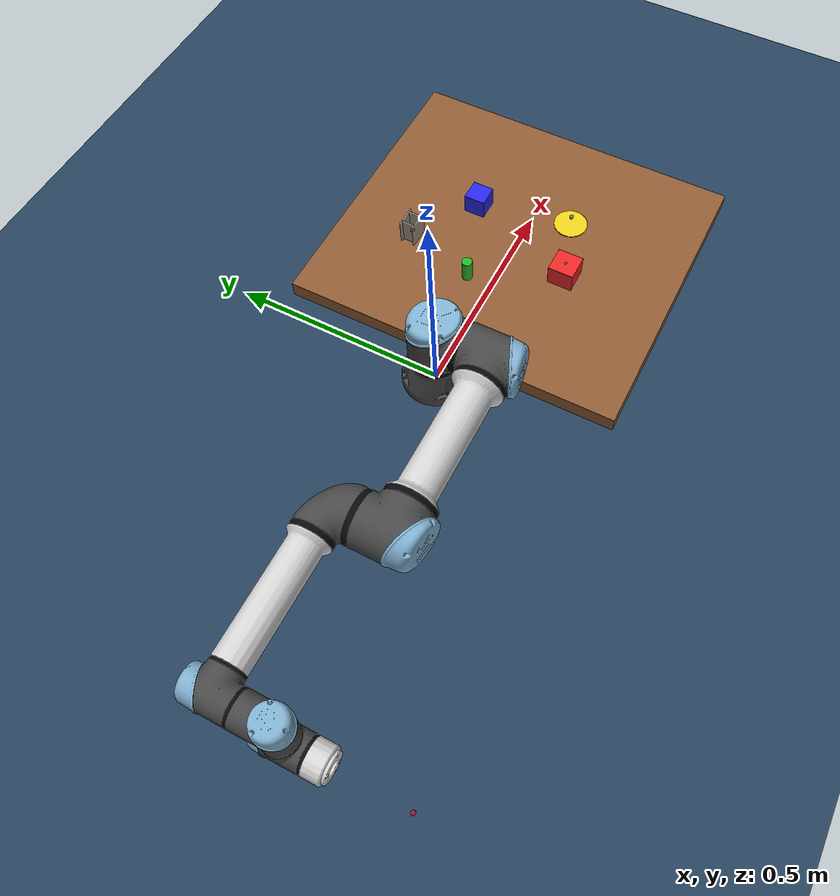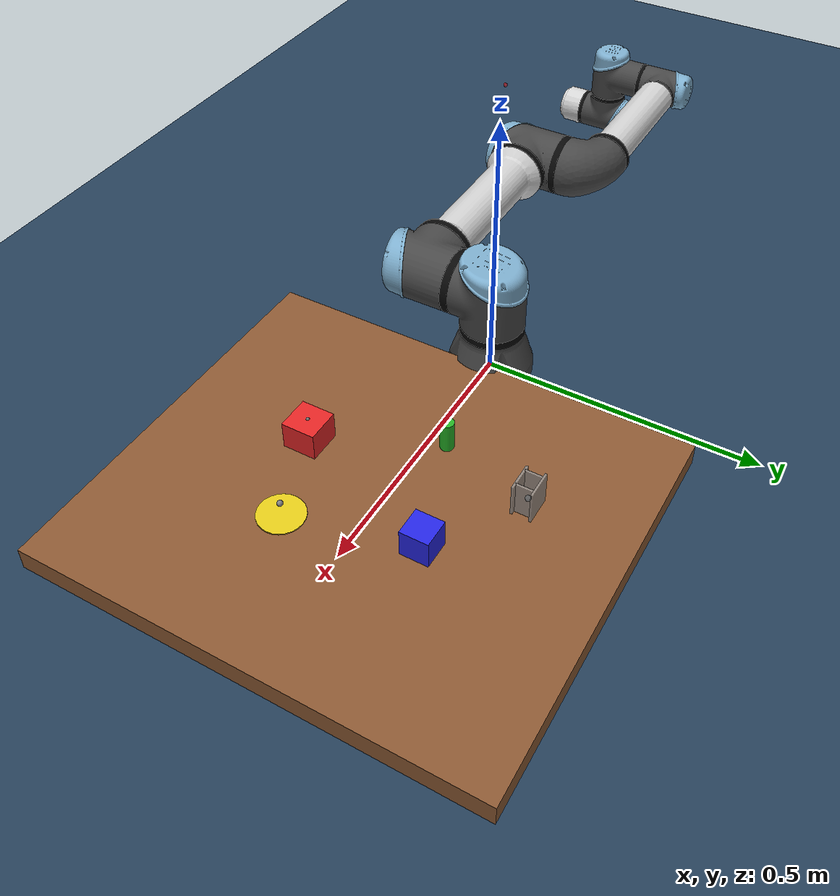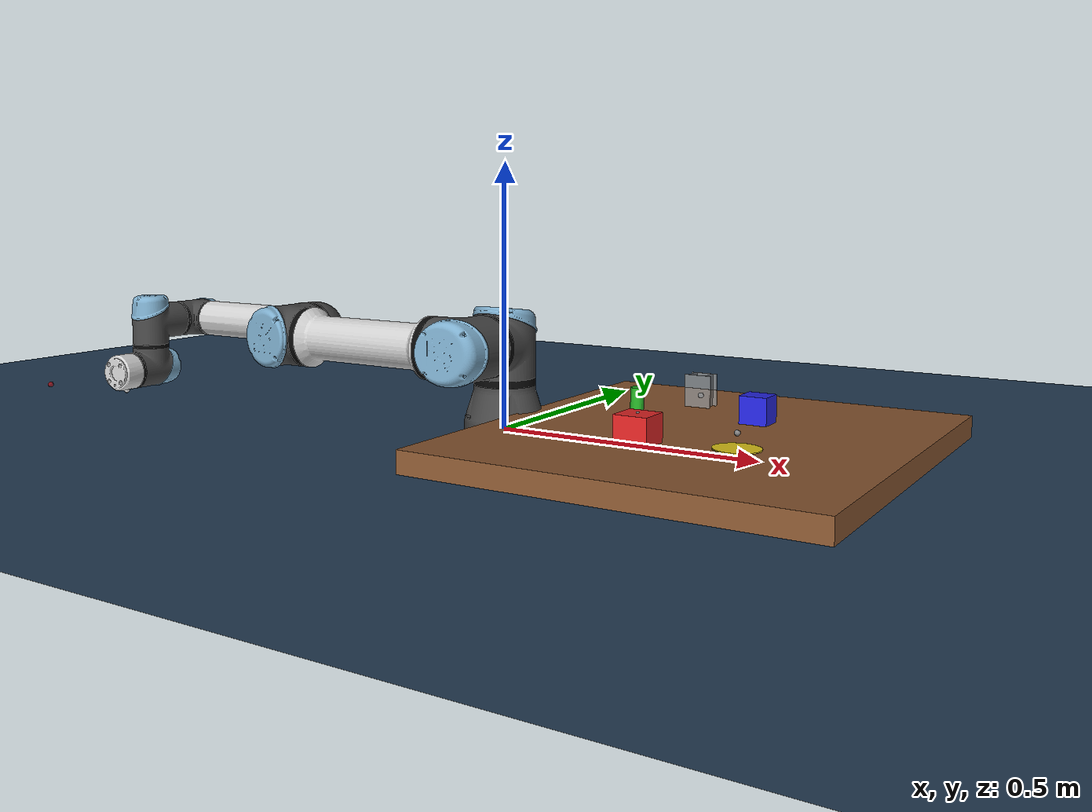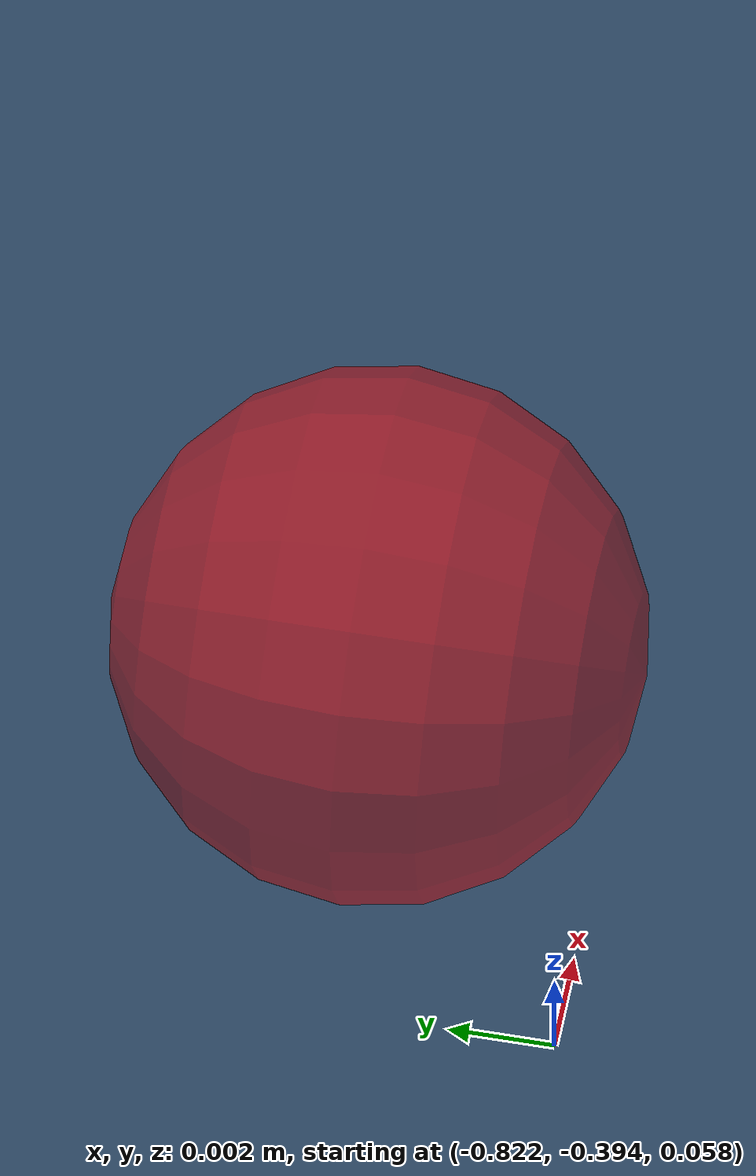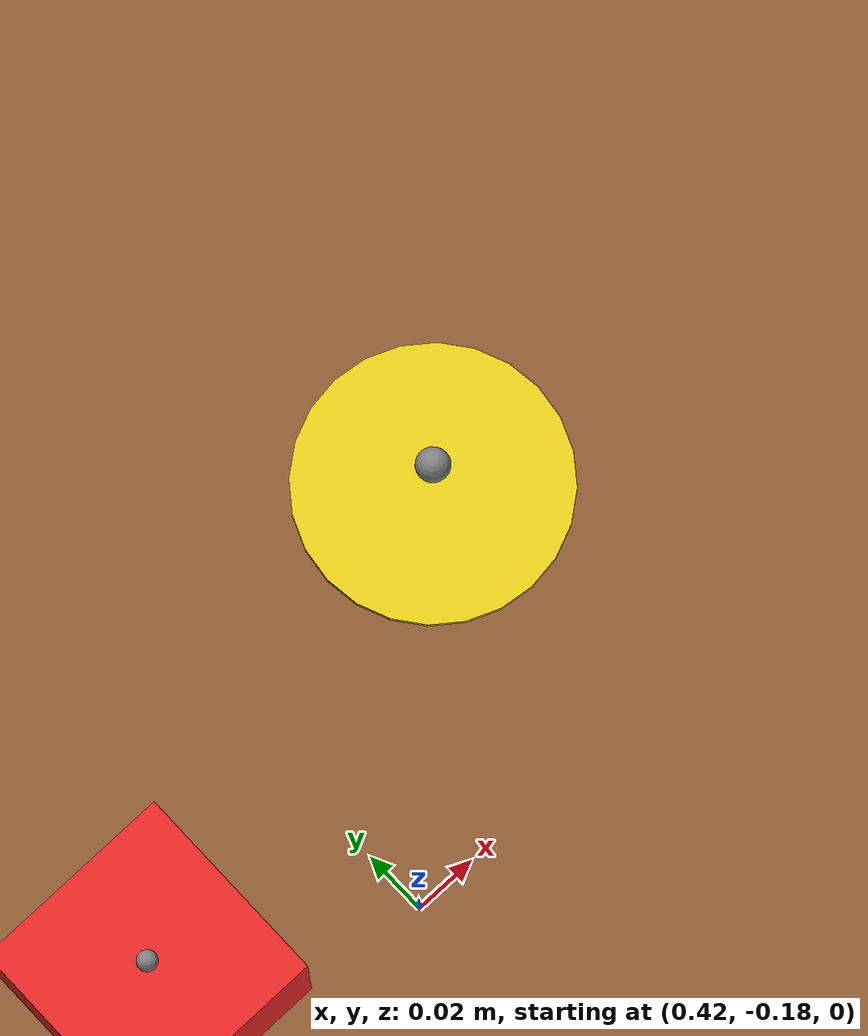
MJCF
<mujoco model="ur5e + robotiq 2f85 assembly">
  <!--
    UR5e arm + Robotiq 2F-85 gripper for assembly tasks.
    The gripper is nested inside wrist_3_link of a self-contained UR5e.
  -->
  <compiler angle="radian" meshdir="." autolimits="true"/>

  <option integrator="implicitfast" cone="elliptic" impratio="10"/>

  <statistic center="0.3 0 0.4" extent="0.8"/>

  <!-- ═══════════════════ DEFAULTS ═══════════════════ -->
  <default>
    <!-- UR5e defaults -->
    <default class="ur5e">
      <material specular="0.5" shininess="0.25"/>
      <joint axis="0 1 0" range="-6.28319 6.28319" armature="0.1"/>
      <general gaintype="fixed" biastype="affine" ctrlrange="-6.2831 6.2831" gainprm="2000" biasprm="0 -2000 -400"
        forcerange="-150 150"/>
      <default class="size3">
        <default class="size3_limited">
          <joint range="-3.1415 3.1415"/>
          <general ctrlrange="-3.1415 3.1415"/>
        </default>
      </default>
      <default class="size1">
        <general gainprm="500" biasprm="0 -500 -100" forcerange="-28 28"/>
      </default>
      <default class="visual">
        <geom type="mesh" contype="0" conaffinity="0" group="2"/>
      </default>
      <default class="collision">
        <geom type="capsule" group="3"/>
        <default class="eef_collision">
          <geom type="cylinder"/>
        </default>
      </default>
      <site size="0.001" rgba="0.5 0.5 0.5 0.3" group="4"/>
    </default>
    <!-- Robotiq 2F-85 defaults -->
    <default class="2f85">
      <mesh scale="0.001 0.001 0.001"/>
      <general biastype="affine"/>
      <joint axis="1 0 0"/>
      <default class="driver">
        <joint range="0 0.8" armature="0.005" damping="0.1" solimplimit="0.95 0.99 0.001" solreflimit="0.005 1"/>
      </default>
      <default class="follower">
        <joint range="-0.872664 0.872664" armature="0.001" pos="0 -0.018 0.0065"
          solimplimit="0.95 0.99 0.001" solreflimit="0.005 1"/>
      </default>
      <default class="spring_link">
        <joint range="-0.29670597283 0.8" armature="0.001" stiffness="0.05" springref="2.62" damping="0.00125"/>
      </default>
      <default class="coupler">
        <joint range="-1.57 0" armature="0.001" solimplimit="0.95 0.99 0.001" solreflimit="0.005 1"/>
      </default>
      <default class="2f85_visual">
        <geom type="mesh" contype="0" conaffinity="0" group="2"/>
      </default>
      <default class="2f85_collision">
        <geom type="mesh" group="3"/>
        <default class="pad_box1">
          <geom mass="0" type="box" pos="0 -0.0026 0.028125" size="0.011 0.004 0.009375"
            friction="0.7" solimp="0.95 0.99 0.001" solref="0.004 1" priority="1" rgba="0.55 0.55 0.55 1"/>
        </default>
        <default class="pad_box2">
          <geom mass="0" type="box" pos="0 -0.0026 0.009375" size="0.011 0.004 0.009375"
            friction="0.6" solimp="0.95 0.99 0.001" solref="0.004 1" priority="1" rgba="0.45 0.45 0.45 1"/>
        </default>
      </default>
    </default>
  </default>

  <!-- ═══════════════════ ASSETS ═══════════════════ -->
  <asset>
    <!-- UR5e meshes -->
    <material class="ur5e" name="black" rgba="0.033 0.033 0.033 1"/>
    <material class="ur5e" name="jointgray" rgba="0.278 0.278 0.278 1"/>
    <material class="ur5e" name="linkgray" rgba="0.82 0.82 0.82 1"/>
    <material class="ur5e" name="urblue" rgba="0.49 0.678 0.8 1"/>
    <mesh file="assets/base_0.obj"/>
    <mesh file="assets/base_1.obj"/>
    <mesh file="assets/shoulder_0.obj"/>
    <mesh file="assets/shoulder_1.obj"/>
    <mesh file="assets/shoulder_2.obj"/>
    <mesh file="assets/upperarm_0.obj"/>
    <mesh file="assets/upperarm_1.obj"/>
    <mesh file="assets/upperarm_2.obj"/>
    <mesh file="assets/upperarm_3.obj"/>
    <mesh file="assets/forearm_0.obj"/>
    <mesh file="assets/forearm_1.obj"/>
    <mesh file="assets/forearm_2.obj"/>
    <mesh file="assets/forearm_3.obj"/>
    <mesh file="assets/wrist1_0.obj"/>
    <mesh file="assets/wrist1_1.obj"/>
    <mesh file="assets/wrist1_2.obj"/>
    <mesh file="assets/wrist2_0.obj"/>
    <mesh file="assets/wrist2_1.obj"/>
    <mesh file="assets/wrist2_2.obj"/>
    <mesh file="assets/wrist3.obj"/>
    <!-- Robotiq meshes -->
    <mesh class="2f85" file="robotiq_2f85/assets/base_mount.stl"/>
    <mesh class="2f85" file="robotiq_2f85/assets/base.stl"/>
    <mesh class="2f85" file="robotiq_2f85/assets/driver.stl"/>
    <mesh class="2f85" file="robotiq_2f85/assets/coupler.stl"/>
    <mesh class="2f85" file="robotiq_2f85/assets/follower.stl"/>
    <mesh class="2f85" file="robotiq_2f85/assets/pad.stl"/>
    <mesh class="2f85" file="robotiq_2f85/assets/silicone_pad.stl"/>
    <mesh class="2f85" file="robotiq_2f85/assets/spring_link.stl"/>
    <!-- Scene materials -->
    <texture type="skybox" builtin="gradient" rgb1="0.3 0.5 0.7" rgb2="0 0 0" width="512" height="3072"/>
    <texture type="2d" name="groundplane" builtin="checker" mark="edge"
      rgb1="0.2 0.3 0.4" rgb2="0.1 0.2 0.3" markrgb="0.8 0.8 0.8" width="300" height="300"/>
    <material name="groundplane" texture="groundplane" texuniform="true" texrepeat="5 5" reflectance="0.2"/>
    <material name="red_mat" rgba="0.9 0.15 0.15 1"/>
    <material name="blue_mat" rgba="0.15 0.15 0.9 1"/>
    <material name="green_mat" rgba="0.15 0.7 0.15 1"/>
    <material name="yellow_mat" rgba="0.9 0.8 0.1 1"/>
  </asset>

  <visual>
    <headlight diffuse="0.6 0.6 0.6" ambient="0.1 0.1 0.1" specular="0 0 0"/>
    <rgba haze="0.15 0.25 0.35 1"/>
    <global azimuth="120" elevation="-20"/>
  </visual>

  <!-- ═══════════════════ WORLDBODY ═══════════════════ -->
  <worldbody>
    <light pos="0 0 1.5" dir="0 0 -1" directional="true"/>
    <light name="spotlight" mode="targetbodycom" target="wrist_2_link" pos="0 -1 2"/>
    <geom name="floor" size="0 0 0.05" type="plane" material="groundplane"/>

    <!-- Table -->
    <body name="table" pos="0.4 0 0.02">
      <geom type="box" size="0.35 0.4 0.02" rgba="0.55 0.35 0.2 1" mass="50"/>
    </body>

    <!-- Camera -->
    <camera name="workspace_cam" pos="0.9 -0.7 0.85" xyaxes="0.707 0.707 0 -0.354 0.354 0.866" fovy="55"/>

    <!-- ═══════════════════ UR5e ARM ═══════════════════ -->
    <body name="base" quat="0 0 0 -1" childclass="ur5e">
      <inertial mass="4.0" pos="0 0 0" diaginertia="0.00443333156 0.00443333156 0.0072"/>
      <geom mesh="base_0" material="black" class="visual"/>
      <geom mesh="base_1" material="jointgray" class="visual"/>
      <body name="shoulder_link" pos="0 0 0.163">
        <inertial mass="3.7" pos="0 0 0" diaginertia="0.0102675 0.0102675 0.00666"/>
        <joint name="shoulder_pan_joint" class="size3" axis="0 0 1"/>
        <geom mesh="shoulder_0" material="urblue" class="visual"/>
        <geom mesh="shoulder_1" material="black" class="visual"/>
        <geom mesh="shoulder_2" material="jointgray" class="visual"/>
        <geom class="collision" size="0.06 0.06" pos="0 0 -0.04"/>
        <body name="upper_arm_link" pos="0 0.138 0" quat="1 0 1 0">
          <inertial mass="8.393" pos="0 0 0.2125" diaginertia="0.133886 0.133886 0.0151074"/>
          <joint name="shoulder_lift_joint" class="size3"/>
          <geom mesh="upperarm_0" material="linkgray" class="visual"/>
          <geom mesh="upperarm_1" material="black" class="visual"/>
          <geom mesh="upperarm_2" material="jointgray" class="visual"/>
          <geom mesh="upperarm_3" material="urblue" class="visual"/>
          <geom class="collision" pos="0 -0.04 0" quat="1 1 0 0" size="0.06 0.06"/>
          <geom class="collision" size="0.05 0.2" pos="0 0 0.2"/>
          <body name="forearm_link" pos="0 -0.131 0.425">
            <inertial mass="2.275" pos="0 0 0.196" diaginertia="0.0311796 0.0311796 0.004095"/>
            <joint name="elbow_joint" class="size3_limited"/>
            <geom mesh="forearm_0" material="urblue" class="visual"/>
            <geom mesh="forearm_1" material="linkgray" class="visual"/>
            <geom mesh="forearm_2" material="black" class="visual"/>
            <geom mesh="forearm_3" material="jointgray" class="visual"/>
            <geom class="collision" pos="0 0.08 0" quat="1 1 0 0" size="0.055 0.06"/>
            <geom class="collision" size="0.038 0.19" pos="0 0 0.2"/>
            <body name="wrist_1_link" pos="0 0 0.392" quat="1 0 1 0">
              <inertial mass="1.219" pos="0 0.127 0" diaginertia="0.0025599 0.0025599 0.0021942"/>
              <joint name="wrist_1_joint" class="size1"/>
              <geom mesh="wrist1_0" material="black" class="visual"/>
              <geom mesh="wrist1_1" material="urblue" class="visual"/>
              <geom mesh="wrist1_2" material="jointgray" class="visual"/>
              <geom class="collision" pos="0 0.05 0" quat="1 1 0 0" size="0.04 0.07"/>
              <body name="wrist_2_link" pos="0 0.127 0">
                <inertial mass="1.219" pos="0 0 0.1" diaginertia="0.0025599 0.0025599 0.0021942"/>
                <joint name="wrist_2_joint" axis="0 0 1" class="size1"/>
                <geom mesh="wrist2_0" material="black" class="visual"/>
                <geom mesh="wrist2_1" material="urblue" class="visual"/>
                <geom mesh="wrist2_2" material="jointgray" class="visual"/>
                <geom class="collision" size="0.04 0.06" pos="0 0 0.04"/>
                <geom class="collision" pos="0 0.02 0.1" quat="1 1 0 0" size="0.04 0.04"/>
                <body name="wrist_3_link" pos="0 0 0.1">
                  <inertial mass="0.1889" pos="0 0.0771683 0" quat="1 0 0 1"
                    diaginertia="0.000132134 9.90863e-05 9.90863e-05"/>
                  <joint name="wrist_3_joint" class="size1"/>
                  <geom material="linkgray" mesh="wrist3" class="visual"/>
                  <geom class="eef_collision" pos="0 0.08 0" quat="1 1 0 0" size="0.04 0.02"/>
                  <site name="attachment_site" pos="0 0.1 0" quat="-1 1 0 0"/>

                  <!-- ═══ ROBOTIQ 2F-85 (nested in wrist_3) ═══ -->
                  <body name="gripper_mount" pos="0 0.1 0" quat="-1 1 0 0" childclass="2f85">
                    <body name="base_mount" pos="0 0 0.007">
                      <geom class="2f85_visual" mesh="base_mount" rgba="0.149 0.149 0.149 1"/>
                      <geom class="2f85_collision" mesh="base_mount"/>
                      <body name="gripper_base" pos="0 0 0.0038" quat="1 0 0 -1">
                        <inertial mass="0.777441" pos="0 -2.70394e-05 0.0354675" quat="1 -0.00152849 0 0"
                          diaginertia="0.000260285 0.000225381 0.000152708"/>
                        <geom class="2f85_visual" mesh="base" rgba="0.149 0.149 0.149 1"/>
                        <geom class="2f85_collision" mesh="base"/>
                        <site name="pinch" pos="0 0 0.145" type="sphere" group="5" rgba="0.9 0.9 0.9 1" size="0.005"/>
                        <site name="tcp_site" pos="0 0 0.145" size="0.005" rgba="1 0 0 0.5"/>
                        <!-- Right 4-bar linkage -->
                        <body name="right_driver" pos="0 0.0306011 0.054904">
                          <inertial mass="0.00899563" pos="2.96931e-12 0.0177547 0.00107314"
                            quat="0.681301 0.732003 0 0" diaginertia="1.72352e-06 1.60906e-06 3.22006e-07"/>
                          <joint name="right_driver_joint" class="driver"/>
                          <geom class="2f85_visual" mesh="driver" rgba="0.4627 0.4627 0.4627 1"/>
                          <geom class="2f85_collision" mesh="driver"/>
                          <body name="right_coupler" pos="0 0.0315 -0.0041">
                            <inertial mass="0.0140974" pos="0 0.00301209 0.0232175"
                              quat="0.705636 -0.0455904 0.0455904 0.705636"
                              diaginertia="4.16206e-06 3.52216e-06 8.88131e-07"/>
                            <joint name="right_coupler_joint" class="coupler"/>
                            <geom class="2f85_visual" mesh="coupler" rgba="0.149 0.149 0.149 1"/>
                            <geom class="2f85_collision" mesh="coupler"/>
                          </body>
                        </body>
                        <body name="right_spring_link" pos="0 0.0132 0.0609">
                          <inertial mass="0.0221642" pos="-8.65005e-09 0.0181624 0.0212658"
                            quat="0.663403 -0.244737 0.244737 0.663403"
                            diaginertia="8.96853e-06 6.71733e-06 2.63931e-06"/>
                          <joint name="right_spring_link_joint" class="spring_link"/>
                          <geom class="2f85_visual" mesh="spring_link" rgba="0.149 0.149 0.149 1"/>
                          <geom class="2f85_collision" mesh="spring_link"/>
                          <body name="right_follower" pos="0 0.055 0.0375">
                            <inertial mass="0.0125222" pos="0 -0.011046 0.0124786" quat="1 0.1664 0 0"
                              diaginertia="2.67415e-06 2.4559e-06 6.02031e-07"/>
                            <joint name="right_follower_joint" class="follower"/>
                            <geom class="2f85_visual" mesh="follower" rgba="0.149 0.149 0.149 1"/>
                            <geom class="2f85_collision" mesh="follower"/>
                            <body name="right_pad" pos="0 -0.0189 0.01352">
                              <geom class="pad_box1" name="right_pad1"/>
                              <geom class="pad_box2" name="right_pad2"/>
                              <inertial mass="0.0035" pos="0 -0.0025 0.0185" quat="0.707107 0 0 0.707107"
                                diaginertia="4.73958e-07 3.64583e-07 1.23958e-07"/>
                              <geom class="2f85_visual" mesh="pad"/>
                              <body name="right_silicone_pad">
                                <geom class="2f85_visual" mesh="silicone_pad" rgba="0.1882 0.1882 0.1882 1"/>
                              </body>
                            </body>
                          </body>
                        </body>
                        <!-- Left 4-bar linkage -->
                        <body name="left_driver" pos="0 -0.0306011 0.054904" quat="0 0 0 1">
                          <inertial mass="0.00899563" pos="0 0.0177547 0.00107314"
                            quat="0.681301 0.732003 0 0" diaginertia="1.72352e-06 1.60906e-06 3.22006e-07"/>
                          <joint name="left_driver_joint" class="driver"/>
                          <geom class="2f85_visual" mesh="driver" rgba="0.4627 0.4627 0.4627 1"/>
                          <geom class="2f85_collision" mesh="driver"/>
                          <body name="left_coupler" pos="0 0.0315 -0.0041">
                            <inertial mass="0.0140974" pos="0 0.00301209 0.0232175"
                              quat="0.705636 -0.0455904 0.0455904 0.705636"
                              diaginertia="4.16206e-06 3.52216e-06 8.88131e-07"/>
                            <joint name="left_coupler_joint" class="coupler"/>
                            <geom class="2f85_visual" mesh="coupler" rgba="0.149 0.149 0.149 1"/>
                            <geom class="2f85_collision" mesh="coupler"/>
                          </body>
                        </body>
                        <body name="left_spring_link" pos="0 -0.0132 0.0609" quat="0 0 0 1">
                          <inertial mass="0.0221642" pos="-8.65005e-09 0.0181624 0.0212658"
                            quat="0.663403 -0.244737 0.244737 0.663403"
                            diaginertia="8.96853e-06 6.71733e-06 2.63931e-06"/>
                          <joint name="left_spring_link_joint" class="spring_link"/>
                          <geom class="2f85_visual" mesh="spring_link" rgba="0.149 0.149 0.149 1"/>
                          <geom class="2f85_collision" mesh="spring_link"/>
                          <body name="left_follower" pos="0 0.055 0.0375">
                            <inertial mass="0.0125222" pos="0 -0.011046 0.0124786" quat="1 0.1664 0 0"
                              diaginertia="2.67415e-06 2.4559e-06 6.02031e-07"/>
                            <joint name="left_follower_joint" class="follower"/>
                            <geom class="2f85_visual" mesh="follower" rgba="0.149 0.149 0.149 1"/>
                            <geom class="2f85_collision" mesh="follower"/>
                            <body name="left_pad" pos="0 -0.0189 0.01352">
                              <geom class="pad_box1" name="left_pad1"/>
                              <geom class="pad_box2" name="left_pad2"/>
                              <inertial mass="0.0035" pos="0 -0.0025 0.0185" quat="1 0 0 1"
                                diaginertia="4.73958e-07 3.64583e-07 1.23958e-07"/>
                              <geom class="2f85_visual" mesh="pad"/>
                              <body name="left_silicone_pad">
                                <geom class="2f85_visual" mesh="silicone_pad" rgba="0.1882 0.1882 0.1882 1"/>
                              </body>
                            </body>
                          </body>
                        </body>
                      </body>
                    </body>
                  </body>
                  <!-- ═══ END GRIPPER ═══ -->

                </body>
              </body>
            </body>
          </body>
        </body>
      </body>
    </body>

    <!-- ═══════════════════ ASSEMBLY OBJECTS ═══════════════════ -->

    <!-- Red block -->
    <body name="red_block" pos="0.35 -0.15 0.065">
      <freejoint name="red_block_jnt"/>
      <geom name="red_block_geom" type="box" size="0.03 0.03 0.025"
            material="red_mat" mass="0.08" condim="4" friction="1.5 0.05 0.01"/>
      <site name="red_block_site" pos="0 0 0.025" size="0.003"/>
    </body>

    <!-- Blue block -->
    <body name="blue_block" pos="0.45 0.12 0.065">
      <freejoint name="blue_block_jnt"/>
      <geom name="blue_block_geom" type="box" size="0.025 0.025 0.025"
            material="blue_mat" mass="0.06" condim="4" friction="1.5 0.05 0.01"/>
      <site name="blue_block_site" pos="0 0 0" size="0.003"/>
    </body>

    <!-- Green peg -->
    <body name="green_peg" pos="0.25 0.05 0.06">
      <freejoint name="green_peg_jnt"/>
      <geom name="green_peg_geom" type="cylinder" size="0.012 0.035"
            material="green_mat" mass="0.04" condim="4" friction="1.5 0.05 0.01"/>
      <site name="green_peg_site" pos="0 0 0" size="0.003"/>
    </body>

    <!-- ═══════════════════ PLACEMENT TARGETS ═══════════════════ -->

    <!-- Yellow placement zone -->
    <body name="place_zone_A" pos="0.5 -0.1 0.041">
      <geom type="cylinder" size="0.04 0.001" material="yellow_mat" contype="0" conaffinity="0"/>
      <site name="place_A_site" pos="0 0 0.025" size="0.005"/>
    </body>

    <!-- Slot for peg insertion -->
    <body name="slot_B" pos="0.3 0.22 0.04">
      <geom type="box" size="0.025 0.002 0.03" pos="0 0.016 0.03" rgba="0.6 0.6 0.6 0.8"/>
      <geom type="box" size="0.025 0.002 0.03" pos="0 -0.016 0.03" rgba="0.6 0.6 0.6 0.8"/>
      <geom type="box" size="0.002 0.016 0.03" pos="0.016 0 0.03" rgba="0.6 0.6 0.6 0.8"/>
      <geom type="box" size="0.002 0.016 0.03" pos="-0.016 0 0.03" rgba="0.6 0.6 0.6 0.8"/>
      <site name="slot_B_site" pos="0 0 0.02" size="0.005"/>
    </body>

  </worldbody>

  <!-- ═══════════════════ GRIPPER CONSTRAINTS ═══════════════════ -->
  <contact>
    <exclude body1="gripper_base" body2="left_driver"/>
    <exclude body1="gripper_base" body2="right_driver"/>
    <exclude body1="gripper_base" body2="left_spring_link"/>
    <exclude body1="gripper_base" body2="right_spring_link"/>
    <exclude body1="right_coupler" body2="right_follower"/>
    <exclude body1="left_coupler" body2="left_follower"/>
  </contact>

  <tendon>
    <fixed name="split">
      <joint joint="right_driver_joint" coef="0.5"/>
      <joint joint="left_driver_joint" coef="0.5"/>
    </fixed>
  </tendon>

  <equality>
    <connect anchor="0 0 0" body1="right_follower" body2="right_coupler"
      solimp="0.95 0.99 0.001" solref="0.005 1"/>
    <connect anchor="0 0 0" body1="left_follower" body2="left_coupler"
      solimp="0.95 0.99 0.001" solref="0.005 1"/>
    <joint joint1="right_driver_joint" joint2="left_driver_joint"
      polycoef="0 1 0 0 0" solimp="0.95 0.99 0.001" solref="0.005 1"/>
  </equality>

  <!-- ═══════════════════ ACTUATORS ═══════════════════ -->
  <actuator>
    <!-- UR5e: 6 joints -->
    <general class="size3" name="shoulder_pan" joint="shoulder_pan_joint"/>
    <general class="size3" name="shoulder_lift" joint="shoulder_lift_joint"/>
    <general class="size3_limited" name="elbow" joint="elbow_joint"/>
    <general class="size1" name="wrist_1" joint="wrist_1_joint"/>
    <general class="size1" name="wrist_2" joint="wrist_2_joint"/>
    <general class="size1" name="wrist_3" joint="wrist_3_joint"/>
    <!-- Robotiq 2F-85: 0=open, 255=closed -->
    <general class="2f85" name="fingers_actuator" tendon="split" forcerange="-5 5"
      ctrlrange="0 255" gainprm="0.3137255 0 0" biasprm="0 -100 -10"/>
  </actuator>

  <keyframe>
    <key name="home" qpos="-1.5708 -1.5708 1.5708 -1.5708 -1.5708 0
                            0 0 0 0 0 0 0 0
                            0.35 -0.15 0.065 1 0 0 0
                            0.45 0.12 0.065 1 0 0 0
                            0.25 0.05 0.06 1 0 0 0"
         ctrl="-1.5708 -1.5708 1.5708 -1.5708 -1.5708 0 0"/>
  </keyframe>
</mujoco>
